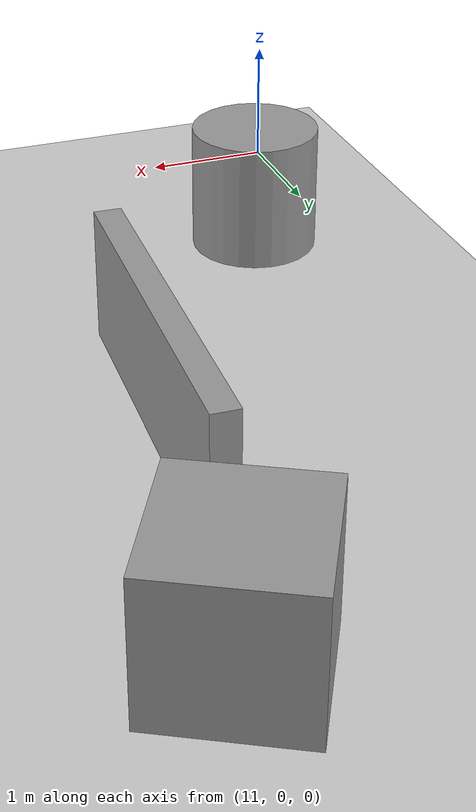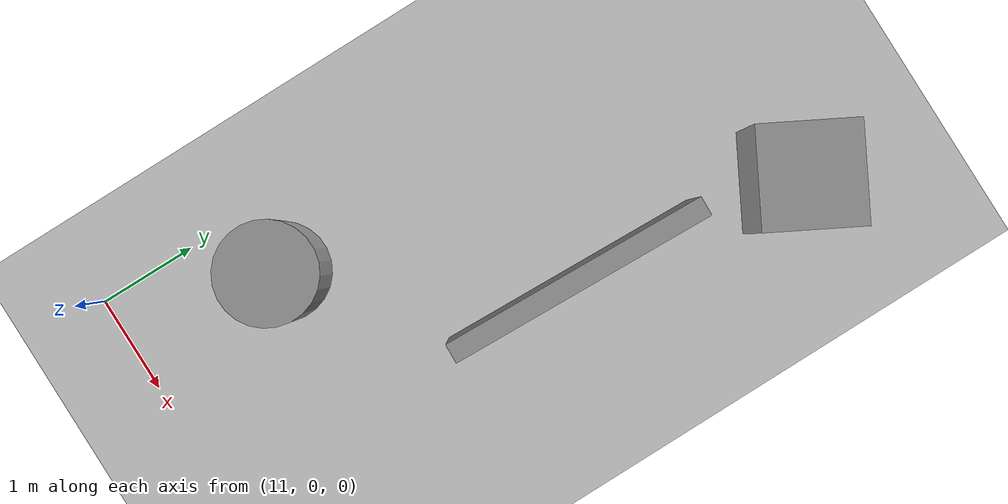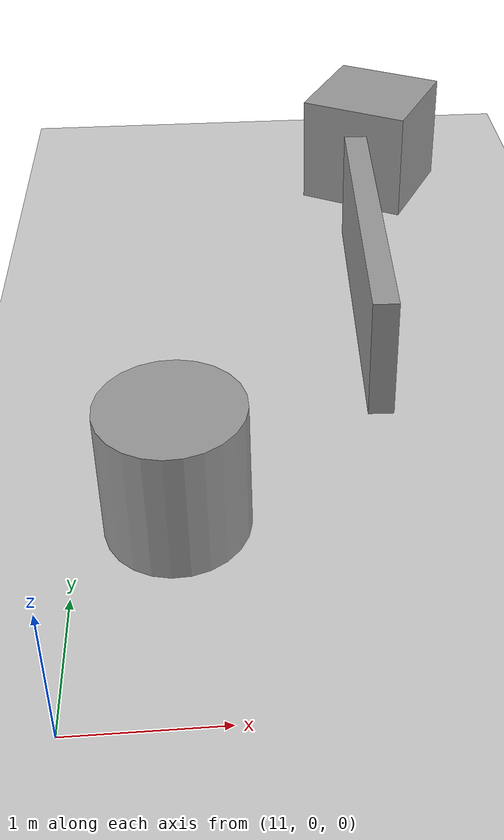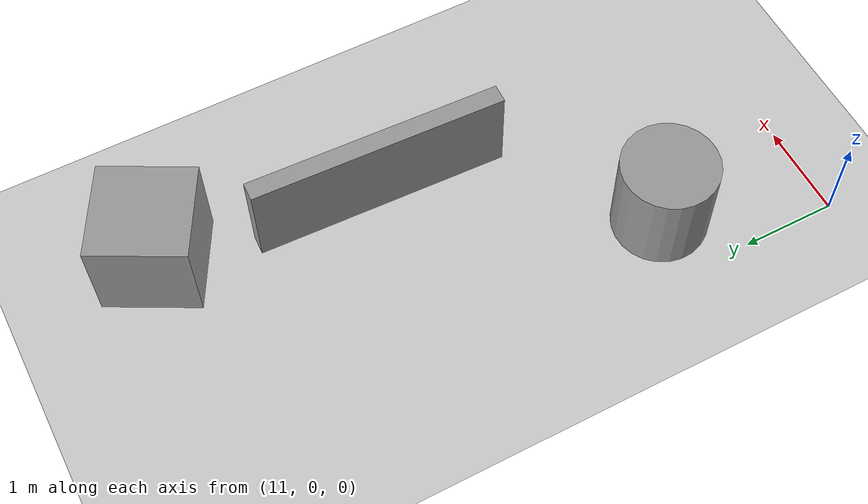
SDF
<sdf version="1.7">
 <world name="default">
  <model name="ground_plane">
   <static>1</static>
   <link name="link">
    <collision name="collision">
     <geometry><plane><normal>0 0 1</normal><size>100 100</size></plane></geometry>
     <surface>
      <contact><collide_bitmask>65535</collide_bitmask></contact>
      <friction><ode><mu>100</mu><mu2>50</mu2></ode></friction>
     </surface>
    </collision>
    <visual name="visual">
     <cast_shadows>0</cast_shadows>
     <geometry><plane><normal>0 0 1</normal><size>100 100</size></plane></geometry>
     <material>
      <script><uri>file://media/materials/scripts/gazebo.material</uri><name>Gazebo/Grey</name></script>
     </material>
    </visual>
   </link>
  </model>
  <model name="unit_box">
   <pose>13.5706 6.34114 0.499917 -6.2e-05 -4e-06 -0.49388</pose>
   <link name="link">
    <inertial>
     <mass>1</mass>
     <inertia>
      <ixx>0.166667</ixx>
      <ixy>0</ixy>
      <ixz>0</ixz>
      <iyy>0.166667</iyy>
      <iyz>0</iyz>
      <izz>0.166667</izz>
     </inertia>
    </inertial>
    <collision name="collision"><geometry><box><size>1 1 1</size></box></geometry></collision>
    <visual name="visual">
     <geometry><box><size>1 1 1</size></box></geometry>
     <material>
      <script><name>Gazebo/Grey</name><uri>file://media/materials/scripts/gazebo.material</uri></script>
     </material>
    </visual>
   </link>
  </model>
  <model name="unit_box_clone">
   <pose>13.2452 4.02133 0.499903 -7.2e-05 -3e-06 -0.036119</pose>
   <link name="link">
    <inertial>
     <mass>1</mass>
     <inertia>
      <ixx>0.166667</ixx>
      <ixy>0</ixy>
      <ixz>0</ixz>
      <iyy>0.166667</iyy>
      <iyz>0</iyz>
      <izz>0.166667</izz>
     </inertia>
    </inertial>
    <collision name="collision"><geometry><box><size>0.198117 2.69832 1</size></box></geometry></collision>
    <visual name="visual">
     <geometry><box><size>0.198117 2.69832 1</size></box></geometry>
     <material>
      <script><name>Gazebo/Grey</name><uri>file://media/materials/scripts/gazebo.material</uri></script>
     </material>
    </visual>
   </link>
  </model>
  <model name="unit_cylinder">
   <pose>11.6736 1.63016 0.499999 0 -0 0.177879</pose>
   <link name="link">
    <inertial>
     <mass>1</mass>
     <inertia><ixx>0.145833</ixx><ixy>0</ixy><ixz>0</ixz><iyy>0.145833</iyy><iyz>0</iyz><izz>0.125</izz></inertia>
    </inertial>
    <collision name="collision">
     <geometry><cylinder><radius>0.5</radius><length>1</length></cylinder></geometry>
    </collision>
    <visual name="visual">
     <geometry><cylinder><radius>0.5</radius><length>1</length></cylinder></geometry>
     <material>
      <script><name>Gazebo/Grey</name><uri>file://media/materials/scripts/gazebo.material</uri></script>
     </material>
    </visual>
   </link>
  </model>
 </world>
</sdf>
